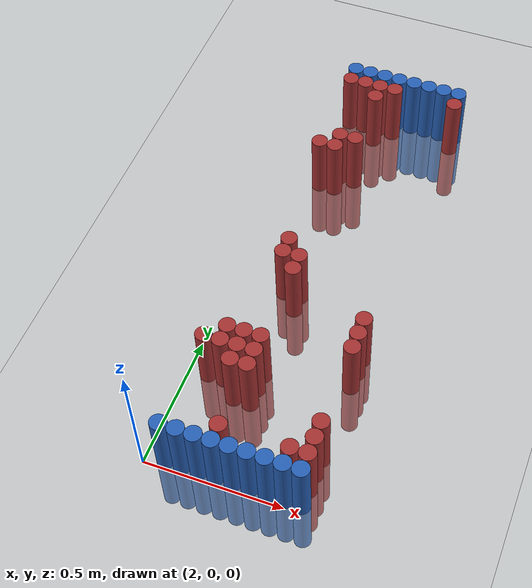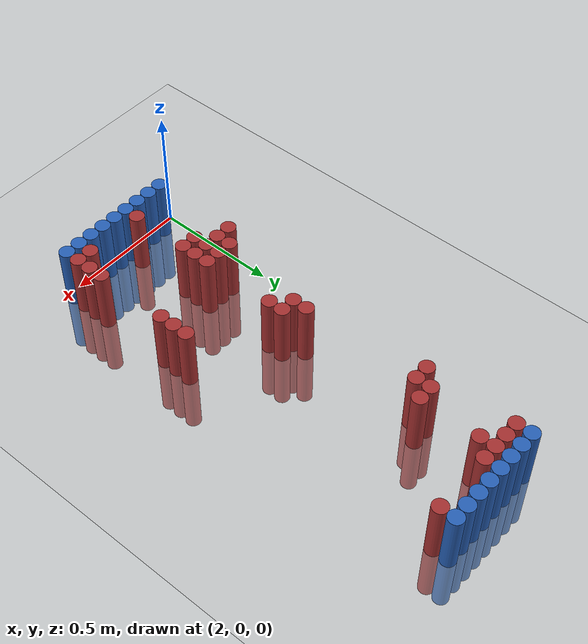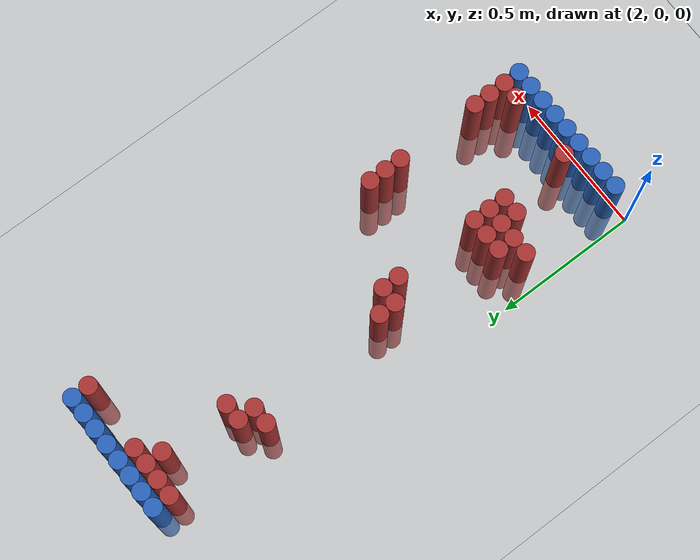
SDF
<sdf version="1.6">
 <world name="default">
  <model name="ground_plane">
   <static>1</static>
   <link name="link">
    <collision name="collision">
     <geometry><plane><normal>0 0 1</normal><size>100 100</size></plane></geometry>
     <surface><friction><ode><mu>100</mu><mu2>50</mu2></ode></friction></surface>
    </collision>
    <visual name="visual">
     <cast_shadows>0</cast_shadows>
     <geometry><plane><normal>0 0 1</normal><size>100 100</size></plane></geometry>
     <material>
      <script><uri>file://media/materials/scripts/gazebo.material</uri><name>Gazebo/Grey</name></script>
     </material>
    </visual>
   </link>
  </model>
  <model name="unit_cylinder_96">
   <static>1</static>
   <pose>2.130000 1.770000 0.000000 0.000000 0.000000 0.000000</pose>
   <link name="link">
    <inertial>
     <mass>1</mass>
     <inertia><ixx>0.145833</ixx><ixy>0</ixy><ixz>0</ixz><iyy>0.145833</iyy><iyz>0</iyz><izz>0.125</izz></inertia>
    </inertial>
    <collision name="collision">
     <geometry><cylinder><radius>0.030000</radius><length>0.5</length></cylinder></geometry>
    </collision>
    <visual name="visual">
     <geometry><cylinder><radius>0.030000</radius><length>0.5</length></cylinder></geometry>
     <material>
      <ambient>0.152000 0.379000 0.720000 1</ambient>
      <diffuse>0.152000 0.379000 0.720000 1</diffuse>
     </material>
     <material>
      <script><name>Gazebo/Grey</name><uri>file://media/materials/scripts/gazebo.material</uri></script>
     </material>
    </visual>
   </link>
  </model>
  <model name="unit_cylinder_97">
   <static>1</static>
   <pose>2.190000 1.770000 0.000000 0.000000 0.000000 0.000000</pose>
   <link name="link">
    <inertial>
     <mass>1</mass>
     <inertia><ixx>0.145833</ixx><ixy>0</ixy><ixz>0</ixz><iyy>0.145833</iyy><iyz>0</iyz><izz>0.125</izz></inertia>
    </inertial>
    <collision name="collision">
     <geometry><cylinder><radius>0.030000</radius><length>0.5</length></cylinder></geometry>
    </collision>
    <visual name="visual">
     <geometry><cylinder><radius>0.030000</radius><length>0.5</length></cylinder></geometry>
     <material>
      <ambient>0.152000 0.379000 0.720000 1</ambient>
      <diffuse>0.152000 0.379000 0.720000 1</diffuse>
     </material>
     <material>
      <script><name>Gazebo/Grey</name><uri>file://media/materials/scripts/gazebo.material</uri></script>
     </material>
    </visual>
   </link>
  </model>
  <model name="unit_cylinder_98">
   <static>1</static>
   <pose>2.250000 1.770000 0.000000 0.000000 0.000000 0.000000</pose>
   <link name="link">
    <inertial>
     <mass>1</mass>
     <inertia><ixx>0.145833</ixx><ixy>0</ixy><ixz>0</ixz><iyy>0.145833</iyy><iyz>0</iyz><izz>0.125</izz></inertia>
    </inertial>
    <collision name="collision">
     <geometry><cylinder><radius>0.030000</radius><length>0.5</length></cylinder></geometry>
    </collision>
    <visual name="visual">
     <geometry><cylinder><radius>0.030000</radius><length>0.5</length></cylinder></geometry>
     <material>
      <ambient>0.152000 0.379000 0.720000 1</ambient>
      <diffuse>0.152000 0.379000 0.720000 1</diffuse>
     </material>
     <material>
      <script><name>Gazebo/Grey</name><uri>file://media/materials/scripts/gazebo.material</uri></script>
     </material>
    </visual>
   </link>
  </model>
  <model name="unit_cylinder_99">
   <static>1</static>
   <pose>2.310000 1.770000 0.000000 0.000000 0.000000 0.000000</pose>
   <link name="link">
    <inertial>
     <mass>1</mass>
     <inertia><ixx>0.145833</ixx><ixy>0</ixy><ixz>0</ixz><iyy>0.145833</iyy><iyz>0</iyz><izz>0.125</izz></inertia>
    </inertial>
    <collision name="collision">
     <geometry><cylinder><radius>0.030000</radius><length>0.5</length></cylinder></geometry>
    </collision>
    <visual name="visual">
     <geometry><cylinder><radius>0.030000</radius><length>0.5</length></cylinder></geometry>
     <material>
      <ambient>0.152000 0.379000 0.720000 1</ambient>
      <diffuse>0.152000 0.379000 0.720000 1</diffuse>
     </material>
     <material>
      <script><name>Gazebo/Grey</name><uri>file://media/materials/scripts/gazebo.material</uri></script>
     </material>
    </visual>
   </link>
  </model>
  <model name="unit_cylinder_100">
   <static>1</static>
   <pose>2.370000 1.770000 0.000000 0.000000 0.000000 0.000000</pose>
   <link name="link">
    <inertial>
     <mass>1</mass>
     <inertia><ixx>0.145833</ixx><ixy>0</ixy><ixz>0</ixz><iyy>0.145833</iyy><iyz>0</iyz><izz>0.125</izz></inertia>
    </inertial>
    <collision name="collision">
     <geometry><cylinder><radius>0.030000</radius><length>0.5</length></cylinder></geometry>
    </collision>
    <visual name="visual">
     <geometry><cylinder><radius>0.030000</radius><length>0.5</length></cylinder></geometry>
     <material>
      <ambient>0.152000 0.379000 0.720000 1</ambient>
      <diffuse>0.152000 0.379000 0.720000 1</diffuse>
     </material>
     <material>
      <script><name>Gazebo/Grey</name><uri>file://media/materials/scripts/gazebo.material</uri></script>
     </material>
    </visual>
   </link>
  </model>
  <model name="unit_cylinder_101">
   <static>1</static>
   <pose>2.430000 1.770000 0.000000 0.000000 0.000000 0.000000</pose>
   <link name="link">
    <inertial>
     <mass>1</mass>
     <inertia><ixx>0.145833</ixx><ixy>0</ixy><ixz>0</ixz><iyy>0.145833</iyy><iyz>0</iyz><izz>0.125</izz></inertia>
    </inertial>
    <collision name="collision">
     <geometry><cylinder><radius>0.030000</radius><length>0.5</length></cylinder></geometry>
    </collision>
    <visual name="visual">
     <geometry><cylinder><radius>0.030000</radius><length>0.5</length></cylinder></geometry>
     <material>
      <ambient>0.152000 0.379000 0.720000 1</ambient>
      <diffuse>0.152000 0.379000 0.720000 1</diffuse>
     </material>
     <material>
      <script><name>Gazebo/Grey</name><uri>file://media/materials/scripts/gazebo.material</uri></script>
     </material>
    </visual>
   </link>
  </model>
  <model name="unit_cylinder_102">
   <static>1</static>
   <pose>2.490000 1.770000 0.000000 0.000000 0.000000 0.000000</pose>
   <link name="link">
    <inertial>
     <mass>1</mass>
     <inertia><ixx>0.145833</ixx><ixy>0</ixy><ixz>0</ixz><iyy>0.145833</iyy><iyz>0</iyz><izz>0.125</izz></inertia>
    </inertial>
    <collision name="collision">
     <geometry><cylinder><radius>0.030000</radius><length>0.5</length></cylinder></geometry>
    </collision>
    <visual name="visual">
     <geometry><cylinder><radius>0.030000</radius><length>0.5</length></cylinder></geometry>
     <material>
      <ambient>0.152000 0.379000 0.720000 1</ambient>
      <diffuse>0.152000 0.379000 0.720000 1</diffuse>
     </material>
     <material>
      <script><name>Gazebo/Grey</name><uri>file://media/materials/scripts/gazebo.material</uri></script>
     </material>
    </visual>
   </link>
  </model>
  <model name="unit_cylinder_103">
   <static>1</static>
   <pose>2.550000 1.770000 0.000000 0.000000 0.000000 0.000000</pose>
   <link name="link">
    <inertial>
     <mass>1</mass>
     <inertia><ixx>0.145833</ixx><ixy>0</ixy><ixz>0</ixz><iyy>0.145833</iyy><iyz>0</iyz><izz>0.125</izz></inertia>
    </inertial>
    <collision name="collision">
     <geometry><cylinder><radius>0.030000</radius><length>0.5</length></cylinder></geometry>
    </collision>
    <visual name="visual">
     <geometry><cylinder><radius>0.030000</radius><length>0.5</length></cylinder></geometry>
     <material>
      <ambient>0.152000 0.379000 0.720000 1</ambient>
      <diffuse>0.152000 0.379000 0.720000 1</diffuse>
     </material>
     <material>
      <script><name>Gazebo/Grey</name><uri>file://media/materials/scripts/gazebo.material</uri></script>
     </material>
    </visual>
   </link>
  </model>
  <model name="unit_cylinder_126">
   <static>1</static>
   <pose>2.130000 1.710000 0.000000 0.000000 0.000000 0.000000</pose>
   <link name="link">
    <inertial>
     <mass>1</mass>
     <inertia><ixx>0.145833</ixx><ixy>0</ixy><ixz>0</ixz><iyy>0.145833</iyy><iyz>0</iyz><izz>0.125</izz></inertia>
    </inertial>
    <collision name="collision">
     <geometry><cylinder><radius>0.030000</radius><length>0.5</length></cylinder></geometry>
    </collision>
    <visual name="visual">
     <geometry><cylinder><radius>0.030000</radius><length>0.5</length></cylinder></geometry>
     <material>
      <ambient>0.648000 0.192000 0.192000 1</ambient>
      <diffuse>0.648000 0.192000 0.192000 1</diffuse>
     </material>
     <material>
      <script><name>Gazebo/Grey</name><uri>file://media/materials/scripts/gazebo.material</uri></script>
     </material>
    </visual>
   </link>
  </model>
  <model name="unit_cylinder_127">
   <static>1</static>
   <pose>2.190000 1.710000 0.000000 0.000000 0.000000 0.000000</pose>
   <link name="link">
    <inertial>
     <mass>1</mass>
     <inertia><ixx>0.145833</ixx><ixy>0</ixy><ixz>0</ixz><iyy>0.145833</iyy><iyz>0</iyz><izz>0.125</izz></inertia>
    </inertial>
    <collision name="collision">
     <geometry><cylinder><radius>0.030000</radius><length>0.5</length></cylinder></geometry>
    </collision>
    <visual name="visual">
     <geometry><cylinder><radius>0.030000</radius><length>0.5</length></cylinder></geometry>
     <material>
      <ambient>0.648000 0.192000 0.192000 1</ambient>
      <diffuse>0.648000 0.192000 0.192000 1</diffuse>
     </material>
     <material>
      <script><name>Gazebo/Grey</name><uri>file://media/materials/scripts/gazebo.material</uri></script>
     </material>
    </visual>
   </link>
  </model>
  <model name="unit_cylinder_128">
   <static>1</static>
   <pose>2.250000 1.710000 0.000000 0.000000 0.000000 0.000000</pose>
   <link name="link">
    <inertial>
     <mass>1</mass>
     <inertia><ixx>0.145833</ixx><ixy>0</ixy><ixz>0</ixz><iyy>0.145833</iyy><iyz>0</iyz><izz>0.125</izz></inertia>
    </inertial>
    <collision name="collision">
     <geometry><cylinder><radius>0.030000</radius><length>0.5</length></cylinder></geometry>
    </collision>
    <visual name="visual">
     <geometry><cylinder><radius>0.030000</radius><length>0.5</length></cylinder></geometry>
     <material>
      <ambient>0.648000 0.192000 0.192000 1</ambient>
      <diffuse>0.648000 0.192000 0.192000 1</diffuse>
     </material>
     <material>
      <script><name>Gazebo/Grey</name><uri>file://media/materials/scripts/gazebo.material</uri></script>
     </material>
    </visual>
   </link>
  </model>
  <model name="unit_cylinder_129">
   <static>1</static>
   <pose>2.310000 1.710000 0.000000 0.000000 0.000000 0.000000</pose>
   <link name="link">
    <inertial>
     <mass>1</mass>
     <inertia><ixx>0.145833</ixx><ixy>0</ixy><ixz>0</ixz><iyy>0.145833</iyy><iyz>0</iyz><izz>0.125</izz></inertia>
    </inertial>
    <collision name="collision">
     <geometry><cylinder><radius>0.030000</radius><length>0.5</length></cylinder></geometry>
    </collision>
    <visual name="visual">
     <geometry><cylinder><radius>0.030000</radius><length>0.5</length></cylinder></geometry>
     <material>
      <ambient>0.648000 0.192000 0.192000 1</ambient>
      <diffuse>0.648000 0.192000 0.192000 1</diffuse>
     </material>
     <material>
      <script><name>Gazebo/Grey</name><uri>file://media/materials/scripts/gazebo.material</uri></script>
     </material>
    </visual>
   </link>
  </model>
  <model name="unit_cylinder_130">
   <static>1</static>
   <pose>2.550000 1.710000 0.000000 0.000000 0.000000 0.000000</pose>
   <link name="link">
    <inertial>
     <mass>1</mass>
     <inertia><ixx>0.145833</ixx><ixy>0</ixy><ixz>0</ixz><iyy>0.145833</iyy><iyz>0</iyz><izz>0.125</izz></inertia>
    </inertial>
    <collision name="collision">
     <geometry><cylinder><radius>0.030000</radius><length>0.5</length></cylinder></geometry>
    </collision>
    <visual name="visual">
     <geometry><cylinder><radius>0.030000</radius><length>0.5</length></cylinder></geometry>
     <material>
      <ambient>0.648000 0.192000 0.192000 1</ambient>
      <diffuse>0.648000 0.192000 0.192000 1</diffuse>
     </material>
     <material>
      <script><name>Gazebo/Grey</name><uri>file://media/materials/scripts/gazebo.material</uri></script>
     </material>
    </visual>
   </link>
  </model>
  <model name="unit_cylinder_139">
   <static>1</static>
   <pose>2.250000 1.650000 0.000000 0.000000 0.000000 0.000000</pose>
   <link name="link">
    <inertial>
     <mass>1</mass>
     <inertia><ixx>0.145833</ixx><ixy>0</ixy><ixz>0</ixz><iyy>0.145833</iyy><iyz>0</iyz><izz>0.125</izz></inertia>
    </inertial>
    <collision name="collision">
     <geometry><cylinder><radius>0.030000</radius><length>0.5</length></cylinder></geometry>
    </collision>
    <visual name="visual">
     <geometry><cylinder><radius>0.030000</radius><length>0.5</length></cylinder></geometry>
     <material>
      <ambient>0.648000 0.192000 0.192000 1</ambient>
      <diffuse>0.648000 0.192000 0.192000 1</diffuse>
     </material>
     <material>
      <script><name>Gazebo/Grey</name><uri>file://media/materials/scripts/gazebo.material</uri></script>
     </material>
    </visual>
   </link>
  </model>
  <model name="unit_cylinder_142">
   <static>1</static>
   <pose>2.190000 1.410000 0.000000 0.000000 0.000000 0.000000</pose>
   <link name="link">
    <inertial>
     <mass>1</mass>
     <inertia><ixx>0.145833</ixx><ixy>0</ixy><ixz>0</ixz><iyy>0.145833</iyy><iyz>0</iyz><izz>0.125</izz></inertia>
    </inertial>
    <collision name="collision">
     <geometry><cylinder><radius>0.030000</radius><length>0.5</length></cylinder></geometry>
    </collision>
    <visual name="visual">
     <geometry><cylinder><radius>0.030000</radius><length>0.5</length></cylinder></geometry>
     <material>
      <ambient>0.648000 0.192000 0.192000 1</ambient>
      <diffuse>0.648000 0.192000 0.192000 1</diffuse>
     </material>
     <material>
      <script><name>Gazebo/Grey</name><uri>file://media/materials/scripts/gazebo.material</uri></script>
     </material>
    </visual>
   </link>
  </model>
  <model name="unit_cylinder_143">
   <static>1</static>
   <pose>2.250000 1.410000 0.000000 0.000000 0.000000 0.000000</pose>
   <link name="link">
    <inertial>
     <mass>1</mass>
     <inertia><ixx>0.145833</ixx><ixy>0</ixy><ixz>0</ixz><iyy>0.145833</iyy><iyz>0</iyz><izz>0.125</izz></inertia>
    </inertial>
    <collision name="collision">
     <geometry><cylinder><radius>0.030000</radius><length>0.5</length></cylinder></geometry>
    </collision>
    <visual name="visual">
     <geometry><cylinder><radius>0.030000</radius><length>0.5</length></cylinder></geometry>
     <material>
      <ambient>0.648000 0.192000 0.192000 1</ambient>
      <diffuse>0.648000 0.192000 0.192000 1</diffuse>
     </material>
     <material>
      <script><name>Gazebo/Grey</name><uri>file://media/materials/scripts/gazebo.material</uri></script>
     </material>
    </visual>
   </link>
  </model>
  <model name="unit_cylinder_144">
   <static>1</static>
   <pose>2.130000 1.350000 0.000000 0.000000 0.000000 0.000000</pose>
   <link name="link">
    <inertial>
     <mass>1</mass>
     <inertia><ixx>0.145833</ixx><ixy>0</ixy><ixz>0</ixz><iyy>0.145833</iyy><iyz>0</iyz><izz>0.125</izz></inertia>
    </inertial>
    <collision name="collision">
     <geometry><cylinder><radius>0.030000</radius><length>0.5</length></cylinder></geometry>
    </collision>
    <visual name="visual">
     <geometry><cylinder><radius>0.030000</radius><length>0.5</length></cylinder></geometry>
     <material>
      <ambient>0.648000 0.192000 0.192000 1</ambient>
      <diffuse>0.648000 0.192000 0.192000 1</diffuse>
     </material>
     <material>
      <script><name>Gazebo/Grey</name><uri>file://media/materials/scripts/gazebo.material</uri></script>
     </material>
    </visual>
   </link>
  </model>
  <model name="unit_cylinder_145">
   <static>1</static>
   <pose>2.190000 1.350000 0.000000 0.000000 0.000000 0.000000</pose>
   <link name="link">
    <inertial>
     <mass>1</mass>
     <inertia><ixx>0.145833</ixx><ixy>0</ixy><ixz>0</ixz><iyy>0.145833</iyy><iyz>0</iyz><izz>0.125</izz></inertia>
    </inertial>
    <collision name="collision">
     <geometry><cylinder><radius>0.030000</radius><length>0.5</length></cylinder></geometry>
    </collision>
    <visual name="visual">
     <geometry><cylinder><radius>0.030000</radius><length>0.5</length></cylinder></geometry>
     <material>
      <ambient>0.648000 0.192000 0.192000 1</ambient>
      <diffuse>0.648000 0.192000 0.192000 1</diffuse>
     </material>
     <material>
      <script><name>Gazebo/Grey</name><uri>file://media/materials/scripts/gazebo.material</uri></script>
     </material>
    </visual>
   </link>
  </model>
  <model name="unit_cylinder_155">
   <static>1</static>
   <pose>2.190000 0.870000 0.000000 0.000000 0.000000 0.000000</pose>
   <link name="link">
    <inertial>
     <mass>1</mass>
     <inertia><ixx>0.145833</ixx><ixy>0</ixy><ixz>0</ixz><iyy>0.145833</iyy><iyz>0</iyz><izz>0.125</izz></inertia>
    </inertial>
    <collision name="collision">
     <geometry><cylinder><radius>0.030000</radius><length>0.5</length></cylinder></geometry>
    </collision>
    <visual name="visual">
     <geometry><cylinder><radius>0.030000</radius><length>0.5</length></cylinder></geometry>
     <material>
      <ambient>0.648000 0.192000 0.192000 1</ambient>
      <diffuse>0.648000 0.192000 0.192000 1</diffuse>
     </material>
     <material>
      <script><name>Gazebo/Grey</name><uri>file://media/materials/scripts/gazebo.material</uri></script>
     </material>
    </visual>
   </link>
  </model>
  <model name="unit_cylinder_156">
   <static>1</static>
   <pose>2.190000 0.810000 0.000000 0.000000 0.000000 0.000000</pose>
   <link name="link">
    <inertial>
     <mass>1</mass>
     <inertia><ixx>0.145833</ixx><ixy>0</ixy><ixz>0</ixz><iyy>0.145833</iyy><iyz>0</iyz><izz>0.125</izz></inertia>
    </inertial>
    <collision name="collision">
     <geometry><cylinder><radius>0.030000</radius><length>0.5</length></cylinder></geometry>
    </collision>
    <visual name="visual">
     <geometry><cylinder><radius>0.030000</radius><length>0.5</length></cylinder></geometry>
     <material>
      <ambient>0.648000 0.192000 0.192000 1</ambient>
      <diffuse>0.648000 0.192000 0.192000 1</diffuse>
     </material>
     <material>
      <script><name>Gazebo/Grey</name><uri>file://media/materials/scripts/gazebo.material</uri></script>
     </material>
    </visual>
   </link>
  </model>
  <model name="unit_cylinder_157">
   <static>1</static>
   <pose>2.250000 0.810000 0.000000 0.000000 0.000000 0.000000</pose>
   <link name="link">
    <inertial>
     <mass>1</mass>
     <inertia><ixx>0.145833</ixx><ixy>0</ixy><ixz>0</ixz><iyy>0.145833</iyy><iyz>0</iyz><izz>0.125</izz></inertia>
    </inertial>
    <collision name="collision">
     <geometry><cylinder><radius>0.030000</radius><length>0.5</length></cylinder></geometry>
    </collision>
    <visual name="visual">
     <geometry><cylinder><radius>0.030000</radius><length>0.5</length></cylinder></geometry>
     <material>
      <ambient>0.648000 0.192000 0.192000 1</ambient>
      <diffuse>0.648000 0.192000 0.192000 1</diffuse>
     </material>
     <material>
      <script><name>Gazebo/Grey</name><uri>file://media/materials/scripts/gazebo.material</uri></script>
     </material>
    </visual>
   </link>
  </model>
  <model name="unit_cylinder_158">
   <static>1</static>
   <pose>2.250000 0.750000 0.000000 0.000000 0.000000 0.000000</pose>
   <link name="link">
    <inertial>
     <mass>1</mass>
     <inertia><ixx>0.145833</ixx><ixy>0</ixy><ixz>0</ixz><iyy>0.145833</iyy><iyz>0</iyz><izz>0.125</izz></inertia>
    </inertial>
    <collision name="collision">
     <geometry><cylinder><radius>0.030000</radius><length>0.5</length></cylinder></geometry>
    </collision>
    <visual name="visual">
     <geometry><cylinder><radius>0.030000</radius><length>0.5</length></cylinder></geometry>
     <material>
      <ambient>0.648000 0.192000 0.192000 1</ambient>
      <diffuse>0.648000 0.192000 0.192000 1</diffuse>
     </material>
     <material>
      <script><name>Gazebo/Grey</name><uri>file://media/materials/scripts/gazebo.material</uri></script>
     </material>
    </visual>
   </link>
  </model>
  <model name="unit_cylinder_160">
   <static>1</static>
   <pose>2.550000 0.630000 0.000000 0.000000 0.000000 0.000000</pose>
   <link name="link">
    <inertial>
     <mass>1</mass>
     <inertia><ixx>0.145833</ixx><ixy>0</ixy><ixz>0</ixz><iyy>0.145833</iyy><iyz>0</iyz><izz>0.125</izz></inertia>
    </inertial>
    <collision name="collision">
     <geometry><cylinder><radius>0.030000</radius><length>0.5</length></cylinder></geometry>
    </collision>
    <visual name="visual">
     <geometry><cylinder><radius>0.030000</radius><length>0.5</length></cylinder></geometry>
     <material>
      <ambient>0.648000 0.192000 0.192000 1</ambient>
      <diffuse>0.648000 0.192000 0.192000 1</diffuse>
     </material>
     <material>
      <script><name>Gazebo/Grey</name><uri>file://media/materials/scripts/gazebo.material</uri></script>
     </material>
    </visual>
   </link>
  </model>
  <model name="unit_cylinder_163">
   <static>1</static>
   <pose>2.550000 0.570000 0.000000 0.000000 0.000000 0.000000</pose>
   <link name="link">
    <inertial>
     <mass>1</mass>
     <inertia><ixx>0.145833</ixx><ixy>0</ixy><ixz>0</ixz><iyy>0.145833</iyy><iyz>0</iyz><izz>0.125</izz></inertia>
    </inertial>
    <collision name="collision">
     <geometry><cylinder><radius>0.030000</radius><length>0.5</length></cylinder></geometry>
    </collision>
    <visual name="visual">
     <geometry><cylinder><radius>0.030000</radius><length>0.5</length></cylinder></geometry>
     <material>
      <ambient>0.648000 0.192000 0.192000 1</ambient>
      <diffuse>0.648000 0.192000 0.192000 1</diffuse>
     </material>
     <material>
      <script><name>Gazebo/Grey</name><uri>file://media/materials/scripts/gazebo.material</uri></script>
     </material>
    </visual>
   </link>
  </model>
  <model name="unit_cylinder_168">
   <static>1</static>
   <pose>2.550000 0.510000 0.000000 0.000000 0.000000 0.000000</pose>
   <link name="link">
    <inertial>
     <mass>1</mass>
     <inertia><ixx>0.145833</ixx><ixy>0</ixy><ixz>0</ixz><iyy>0.145833</iyy><iyz>0</iyz><izz>0.125</izz></inertia>
    </inertial>
    <collision name="collision">
     <geometry><cylinder><radius>0.030000</radius><length>0.5</length></cylinder></geometry>
    </collision>
    <visual name="visual">
     <geometry><cylinder><radius>0.030000</radius><length>0.5</length></cylinder></geometry>
     <material>
      <ambient>0.648000 0.192000 0.192000 1</ambient>
      <diffuse>0.648000 0.192000 0.192000 1</diffuse>
     </material>
     <material>
      <script><name>Gazebo/Grey</name><uri>file://media/materials/scripts/gazebo.material</uri></script>
     </material>
    </visual>
   </link>
  </model>
  <model name="unit_cylinder_174">
   <static>1</static>
   <pose>2.130000 0.450000 0.000000 0.000000 0.000000 0.000000</pose>
   <link name="link">
    <inertial>
     <mass>1</mass>
     <inertia><ixx>0.145833</ixx><ixy>0</ixy><ixz>0</ixz><iyy>0.145833</iyy><iyz>0</iyz><izz>0.125</izz></inertia>
    </inertial>
    <collision name="collision">
     <geometry><cylinder><radius>0.030000</radius><length>0.5</length></cylinder></geometry>
    </collision>
    <visual name="visual">
     <geometry><cylinder><radius>0.030000</radius><length>0.5</length></cylinder></geometry>
     <material>
      <ambient>0.648000 0.192000 0.192000 1</ambient>
      <diffuse>0.648000 0.192000 0.192000 1</diffuse>
     </material>
     <material>
      <script><name>Gazebo/Grey</name><uri>file://media/materials/scripts/gazebo.material</uri></script>
     </material>
    </visual>
   </link>
  </model>
  <model name="unit_cylinder_175">
   <static>1</static>
   <pose>2.190000 0.450000 0.000000 0.000000 0.000000 0.000000</pose>
   <link name="link">
    <inertial>
     <mass>1</mass>
     <inertia><ixx>0.145833</ixx><ixy>0</ixy><ixz>0</ixz><iyy>0.145833</iyy><iyz>0</iyz><izz>0.125</izz></inertia>
    </inertial>
    <collision name="collision">
     <geometry><cylinder><radius>0.030000</radius><length>0.5</length></cylinder></geometry>
    </collision>
    <visual name="visual">
     <geometry><cylinder><radius>0.030000</radius><length>0.5</length></cylinder></geometry>
     <material>
      <ambient>0.648000 0.192000 0.192000 1</ambient>
      <diffuse>0.648000 0.192000 0.192000 1</diffuse>
     </material>
     <material>
      <script><name>Gazebo/Grey</name><uri>file://media/materials/scripts/gazebo.material</uri></script>
     </material>
    </visual>
   </link>
  </model>
  <model name="unit_cylinder_176">
   <static>1</static>
   <pose>2.250000 0.450000 0.000000 0.000000 0.000000 0.000000</pose>
   <link name="link">
    <inertial>
     <mass>1</mass>
     <inertia><ixx>0.145833</ixx><ixy>0</ixy><ixz>0</ixz><iyy>0.145833</iyy><iyz>0</iyz><izz>0.125</izz></inertia>
    </inertial>
    <collision name="collision">
     <geometry><cylinder><radius>0.030000</radius><length>0.5</length></cylinder></geometry>
    </collision>
    <visual name="visual">
     <geometry><cylinder><radius>0.030000</radius><length>0.5</length></cylinder></geometry>
     <material>
      <ambient>0.648000 0.192000 0.192000 1</ambient>
      <diffuse>0.648000 0.192000 0.192000 1</diffuse>
     </material>
     <material>
      <script><name>Gazebo/Grey</name><uri>file://media/materials/scripts/gazebo.material</uri></script>
     </material>
    </visual>
   </link>
  </model>
  <model name="unit_cylinder_181">
   <static>1</static>
   <pose>2.070000 0.390000 0.000000 0.000000 0.000000 0.000000</pose>
   <link name="link">
    <inertial>
     <mass>1</mass>
     <inertia><ixx>0.145833</ixx><ixy>0</ixy><ixz>0</ixz><iyy>0.145833</iyy><iyz>0</iyz><izz>0.125</izz></inertia>
    </inertial>
    <collision name="collision">
     <geometry><cylinder><radius>0.030000</radius><length>0.5</length></cylinder></geometry>
    </collision>
    <visual name="visual">
     <geometry><cylinder><radius>0.030000</radius><length>0.5</length></cylinder></geometry>
     <material>
      <ambient>0.648000 0.192000 0.192000 1</ambient>
      <diffuse>0.648000 0.192000 0.192000 1</diffuse>
     </material>
     <material>
      <script><name>Gazebo/Grey</name><uri>file://media/materials/scripts/gazebo.material</uri></script>
     </material>
    </visual>
   </link>
  </model>
  <model name="unit_cylinder_182">
   <static>1</static>
   <pose>2.130000 0.390000 0.000000 0.000000 0.000000 0.000000</pose>
   <link name="link">
    <inertial>
     <mass>1</mass>
     <inertia><ixx>0.145833</ixx><ixy>0</ixy><ixz>0</ixz><iyy>0.145833</iyy><iyz>0</iyz><izz>0.125</izz></inertia>
    </inertial>
    <collision name="collision">
     <geometry><cylinder><radius>0.030000</radius><length>0.5</length></cylinder></geometry>
    </collision>
    <visual name="visual">
     <geometry><cylinder><radius>0.030000</radius><length>0.5</length></cylinder></geometry>
     <material>
      <ambient>0.648000 0.192000 0.192000 1</ambient>
      <diffuse>0.648000 0.192000 0.192000 1</diffuse>
     </material>
     <material>
      <script><name>Gazebo/Grey</name><uri>file://media/materials/scripts/gazebo.material</uri></script>
     </material>
    </visual>
   </link>
  </model>
  <model name="unit_cylinder_183">
   <static>1</static>
   <pose>2.190000 0.390000 0.000000 0.000000 0.000000 0.000000</pose>
   <link name="link">
    <inertial>
     <mass>1</mass>
     <inertia><ixx>0.145833</ixx><ixy>0</ixy><ixz>0</ixz><iyy>0.145833</iyy><iyz>0</iyz><izz>0.125</izz></inertia>
    </inertial>
    <collision name="collision">
     <geometry><cylinder><radius>0.030000</radius><length>0.5</length></cylinder></geometry>
    </collision>
    <visual name="visual">
     <geometry><cylinder><radius>0.030000</radius><length>0.5</length></cylinder></geometry>
     <material>
      <ambient>0.648000 0.192000 0.192000 1</ambient>
      <diffuse>0.648000 0.192000 0.192000 1</diffuse>
     </material>
     <material>
      <script><name>Gazebo/Grey</name><uri>file://media/materials/scripts/gazebo.material</uri></script>
     </material>
    </visual>
   </link>
  </model>
  <model name="unit_cylinder_184">
   <static>1</static>
   <pose>2.250000 0.390000 0.000000 0.000000 0.000000 0.000000</pose>
   <link name="link">
    <inertial>
     <mass>1</mass>
     <inertia><ixx>0.145833</ixx><ixy>0</ixy><ixz>0</ixz><iyy>0.145833</iyy><iyz>0</iyz><izz>0.125</izz></inertia>
    </inertial>
    <collision name="collision">
     <geometry><cylinder><radius>0.030000</radius><length>0.5</length></cylinder></geometry>
    </collision>
    <visual name="visual">
     <geometry><cylinder><radius>0.030000</radius><length>0.5</length></cylinder></geometry>
     <material>
      <ambient>0.648000 0.192000 0.192000 1</ambient>
      <diffuse>0.648000 0.192000 0.192000 1</diffuse>
     </material>
     <material>
      <script><name>Gazebo/Grey</name><uri>file://media/materials/scripts/gazebo.material</uri></script>
     </material>
    </visual>
   </link>
  </model>
  <model name="unit_cylinder_187">
   <static>1</static>
   <pose>2.190000 0.330000 0.000000 0.000000 0.000000 0.000000</pose>
   <link name="link">
    <inertial>
     <mass>1</mass>
     <inertia><ixx>0.145833</ixx><ixy>0</ixy><ixz>0</ixz><iyy>0.145833</iyy><iyz>0</iyz><izz>0.125</izz></inertia>
    </inertial>
    <collision name="collision">
     <geometry><cylinder><radius>0.030000</radius><length>0.5</length></cylinder></geometry>
    </collision>
    <visual name="visual">
     <geometry><cylinder><radius>0.030000</radius><length>0.5</length></cylinder></geometry>
     <material>
      <ambient>0.648000 0.192000 0.192000 1</ambient>
      <diffuse>0.648000 0.192000 0.192000 1</diffuse>
     </material>
     <material>
      <script><name>Gazebo/Grey</name><uri>file://media/materials/scripts/gazebo.material</uri></script>
     </material>
    </visual>
   </link>
  </model>
  <model name="unit_cylinder_188">
   <static>1</static>
   <pose>2.250000 0.330000 0.000000 0.000000 0.000000 0.000000</pose>
   <link name="link">
    <inertial>
     <mass>1</mass>
     <inertia><ixx>0.145833</ixx><ixy>0</ixy><ixz>0</ixz><iyy>0.145833</iyy><iyz>0</iyz><izz>0.125</izz></inertia>
    </inertial>
    <collision name="collision">
     <geometry><cylinder><radius>0.030000</radius><length>0.5</length></cylinder></geometry>
    </collision>
    <visual name="visual">
     <geometry><cylinder><radius>0.030000</radius><length>0.5</length></cylinder></geometry>
     <material>
      <ambient>0.648000 0.192000 0.192000 1</ambient>
      <diffuse>0.648000 0.192000 0.192000 1</diffuse>
     </material>
     <material>
      <script><name>Gazebo/Grey</name><uri>file://media/materials/scripts/gazebo.material</uri></script>
     </material>
    </visual>
   </link>
  </model>
  <model name="unit_cylinder_190">
   <static>1</static>
   <pose>2.550000 0.210000 0.000000 0.000000 0.000000 0.000000</pose>
   <link name="link">
    <inertial>
     <mass>1</mass>
     <inertia><ixx>0.145833</ixx><ixy>0</ixy><ixz>0</ixz><iyy>0.145833</iyy><iyz>0</iyz><izz>0.125</izz></inertia>
    </inertial>
    <collision name="collision">
     <geometry><cylinder><radius>0.030000</radius><length>0.5</length></cylinder></geometry>
    </collision>
    <visual name="visual">
     <geometry><cylinder><radius>0.030000</radius><length>0.5</length></cylinder></geometry>
     <material>
      <ambient>0.648000 0.192000 0.192000 1</ambient>
      <diffuse>0.648000 0.192000 0.192000 1</diffuse>
     </material>
     <material>
      <script><name>Gazebo/Grey</name><uri>file://media/materials/scripts/gazebo.material</uri></script>
     </material>
    </visual>
   </link>
  </model>
  <model name="unit_cylinder_191">
   <static>1</static>
   <pose>2.550000 0.150000 0.000000 0.000000 0.000000 0.000000</pose>
   <link name="link">
    <inertial>
     <mass>1</mass>
     <inertia><ixx>0.145833</ixx><ixy>0</ixy><ixz>0</ixz><iyy>0.145833</iyy><iyz>0</iyz><izz>0.125</izz></inertia>
    </inertial>
    <collision name="collision">
     <geometry><cylinder><radius>0.030000</radius><length>0.5</length></cylinder></geometry>
    </collision>
    <visual name="visual">
     <geometry><cylinder><radius>0.030000</radius><length>0.5</length></cylinder></geometry>
     <material>
      <ambient>0.648000 0.192000 0.192000 1</ambient>
      <diffuse>0.648000 0.192000 0.192000 1</diffuse>
     </material>
     <material>
      <script><name>Gazebo/Grey</name><uri>file://media/materials/scripts/gazebo.material</uri></script>
     </material>
    </visual>
   </link>
  </model>
  <model name="unit_cylinder_196">
   <static>1</static>
   <pose>2.250000 0.090000 0.000000 0.000000 0.000000 0.000000</pose>
   <link name="link">
    <inertial>
     <mass>1</mass>
     <inertia><ixx>0.145833</ixx><ixy>0</ixy><ixz>0</ixz><iyy>0.145833</iyy><iyz>0</iyz><izz>0.125</izz></inertia>
    </inertial>
    <collision name="collision">
     <geometry><cylinder><radius>0.030000</radius><length>0.5</length></cylinder></geometry>
    </collision>
    <visual name="visual">
     <geometry><cylinder><radius>0.030000</radius><length>0.5</length></cylinder></geometry>
     <material>
      <ambient>0.648000 0.192000 0.192000 1</ambient>
      <diffuse>0.648000 0.192000 0.192000 1</diffuse>
     </material>
     <material>
      <script><name>Gazebo/Grey</name><uri>file://media/materials/scripts/gazebo.material</uri></script>
     </material>
    </visual>
   </link>
  </model>
  <model name="unit_cylinder_197">
   <static>1</static>
   <pose>2.490000 0.090000 0.000000 0.000000 0.000000 0.000000</pose>
   <link name="link">
    <inertial>
     <mass>1</mass>
     <inertia><ixx>0.145833</ixx><ixy>0</ixy><ixz>0</ixz><iyy>0.145833</iyy><iyz>0</iyz><izz>0.125</izz></inertia>
    </inertial>
    <collision name="collision">
     <geometry><cylinder><radius>0.030000</radius><length>0.5</length></cylinder></geometry>
    </collision>
    <visual name="visual">
     <geometry><cylinder><radius>0.030000</radius><length>0.5</length></cylinder></geometry>
     <material>
      <ambient>0.648000 0.192000 0.192000 1</ambient>
      <diffuse>0.648000 0.192000 0.192000 1</diffuse>
     </material>
     <material>
      <script><name>Gazebo/Grey</name><uri>file://media/materials/scripts/gazebo.material</uri></script>
     </material>
    </visual>
   </link>
  </model>
  <model name="unit_cylinder_198">
   <static>1</static>
   <pose>2.550000 0.090000 0.000000 0.000000 0.000000 0.000000</pose>
   <link name="link">
    <inertial>
     <mass>1</mass>
     <inertia><ixx>0.145833</ixx><ixy>0</ixy><ixz>0</ixz><iyy>0.145833</iyy><iyz>0</iyz><izz>0.125</izz></inertia>
    </inertial>
    <collision name="collision">
     <geometry><cylinder><radius>0.030000</radius><length>0.5</length></cylinder></geometry>
    </collision>
    <visual name="visual">
     <geometry><cylinder><radius>0.030000</radius><length>0.5</length></cylinder></geometry>
     <material>
      <ambient>0.648000 0.192000 0.192000 1</ambient>
      <diffuse>0.648000 0.192000 0.192000 1</diffuse>
     </material>
     <material>
      <script><name>Gazebo/Grey</name><uri>file://media/materials/scripts/gazebo.material</uri></script>
     </material>
    </visual>
   </link>
  </model>
  <model name="unit_cylinder_212">
   <static>1</static>
   <pose>2.070000 0.030000 0.000000 0.000000 0.000000 0.000000</pose>
   <link name="link">
    <inertial>
     <mass>1</mass>
     <inertia><ixx>0.145833</ixx><ixy>0</ixy><ixz>0</ixz><iyy>0.145833</iyy><iyz>0</iyz><izz>0.125</izz></inertia>
    </inertial>
    <collision name="collision">
     <geometry><cylinder><radius>0.030000</radius><length>0.5</length></cylinder></geometry>
    </collision>
    <visual name="visual">
     <geometry><cylinder><radius>0.030000</radius><length>0.5</length></cylinder></geometry>
     <material>
      <ambient>0.152000 0.379000 0.720000 1</ambient>
      <diffuse>0.152000 0.379000 0.720000 1</diffuse>
     </material>
     <material>
      <script><name>Gazebo/Grey</name><uri>file://media/materials/scripts/gazebo.material</uri></script>
     </material>
    </visual>
   </link>
  </model>
  <model name="unit_cylinder_213">
   <static>1</static>
   <pose>2.130000 0.030000 0.000000 0.000000 0.000000 0.000000</pose>
   <link name="link">
    <inertial>
     <mass>1</mass>
     <inertia><ixx>0.145833</ixx><ixy>0</ixy><ixz>0</ixz><iyy>0.145833</iyy><iyz>0</iyz><izz>0.125</izz></inertia>
    </inertial>
    <collision name="collision">
     <geometry><cylinder><radius>0.030000</radius><length>0.5</length></cylinder></geometry>
    </collision>
    <visual name="visual">
     <geometry><cylinder><radius>0.030000</radius><length>0.5</length></cylinder></geometry>
     <material>
      <ambient>0.152000 0.379000 0.720000 1</ambient>
      <diffuse>0.152000 0.379000 0.720000 1</diffuse>
     </material>
     <material>
      <script><name>Gazebo/Grey</name><uri>file://media/materials/scripts/gazebo.material</uri></script>
     </material>
    </visual>
   </link>
  </model>
  <model name="unit_cylinder_214">
   <static>1</static>
   <pose>2.190000 0.030000 0.000000 0.000000 0.000000 0.000000</pose>
   <link name="link">
    <inertial>
     <mass>1</mass>
     <inertia><ixx>0.145833</ixx><ixy>0</ixy><ixz>0</ixz><iyy>0.145833</iyy><iyz>0</iyz><izz>0.125</izz></inertia>
    </inertial>
    <collision name="collision">
     <geometry><cylinder><radius>0.030000</radius><length>0.5</length></cylinder></geometry>
    </collision>
    <visual name="visual">
     <geometry><cylinder><radius>0.030000</radius><length>0.5</length></cylinder></geometry>
     <material>
      <ambient>0.152000 0.379000 0.720000 1</ambient>
      <diffuse>0.152000 0.379000 0.720000 1</diffuse>
     </material>
     <material>
      <script><name>Gazebo/Grey</name><uri>file://media/materials/scripts/gazebo.material</uri></script>
     </material>
    </visual>
   </link>
  </model>
  <model name="unit_cylinder_215">
   <static>1</static>
   <pose>2.250000 0.030000 0.000000 0.000000 0.000000 0.000000</pose>
   <link name="link">
    <inertial>
     <mass>1</mass>
     <inertia><ixx>0.145833</ixx><ixy>0</ixy><ixz>0</ixz><iyy>0.145833</iyy><iyz>0</iyz><izz>0.125</izz></inertia>
    </inertial>
    <collision name="collision">
     <geometry><cylinder><radius>0.030000</radius><length>0.5</length></cylinder></geometry>
    </collision>
    <visual name="visual">
     <geometry><cylinder><radius>0.030000</radius><length>0.5</length></cylinder></geometry>
     <material>
      <ambient>0.152000 0.379000 0.720000 1</ambient>
      <diffuse>0.152000 0.379000 0.720000 1</diffuse>
     </material>
     <material>
      <script><name>Gazebo/Grey</name><uri>file://media/materials/scripts/gazebo.material</uri></script>
     </material>
    </visual>
   </link>
  </model>
  <model name="unit_cylinder_216">
   <static>1</static>
   <pose>2.310000 0.030000 0.000000 0.000000 0.000000 0.000000</pose>
   <link name="link">
    <inertial>
     <mass>1</mass>
     <inertia><ixx>0.145833</ixx><ixy>0</ixy><ixz>0</ixz><iyy>0.145833</iyy><iyz>0</iyz><izz>0.125</izz></inertia>
    </inertial>
    <collision name="collision">
     <geometry><cylinder><radius>0.030000</radius><length>0.5</length></cylinder></geometry>
    </collision>
    <visual name="visual">
     <geometry><cylinder><radius>0.030000</radius><length>0.5</length></cylinder></geometry>
     <material>
      <ambient>0.152000 0.379000 0.720000 1</ambient>
      <diffuse>0.152000 0.379000 0.720000 1</diffuse>
     </material>
     <material>
      <script><name>Gazebo/Grey</name><uri>file://media/materials/scripts/gazebo.material</uri></script>
     </material>
    </visual>
   </link>
  </model>
  <model name="unit_cylinder_217">
   <static>1</static>
   <pose>2.370000 0.030000 0.000000 0.000000 0.000000 0.000000</pose>
   <link name="link">
    <inertial>
     <mass>1</mass>
     <inertia><ixx>0.145833</ixx><ixy>0</ixy><ixz>0</ixz><iyy>0.145833</iyy><iyz>0</iyz><izz>0.125</izz></inertia>
    </inertial>
    <collision name="collision">
     <geometry><cylinder><radius>0.030000</radius><length>0.5</length></cylinder></geometry>
    </collision>
    <visual name="visual">
     <geometry><cylinder><radius>0.030000</radius><length>0.5</length></cylinder></geometry>
     <material>
      <ambient>0.152000 0.379000 0.720000 1</ambient>
      <diffuse>0.152000 0.379000 0.720000 1</diffuse>
     </material>
     <material>
      <script><name>Gazebo/Grey</name><uri>file://media/materials/scripts/gazebo.material</uri></script>
     </material>
    </visual>
   </link>
  </model>
  <model name="unit_cylinder_218">
   <static>1</static>
   <pose>2.430000 0.030000 0.000000 0.000000 0.000000 0.000000</pose>
   <link name="link">
    <inertial>
     <mass>1</mass>
     <inertia><ixx>0.145833</ixx><ixy>0</ixy><ixz>0</ixz><iyy>0.145833</iyy><iyz>0</iyz><izz>0.125</izz></inertia>
    </inertial>
    <collision name="collision">
     <geometry><cylinder><radius>0.030000</radius><length>0.5</length></cylinder></geometry>
    </collision>
    <visual name="visual">
     <geometry><cylinder><radius>0.030000</radius><length>0.5</length></cylinder></geometry>
     <material>
      <ambient>0.152000 0.379000 0.720000 1</ambient>
      <diffuse>0.152000 0.379000 0.720000 1</diffuse>
     </material>
     <material>
      <script><name>Gazebo/Grey</name><uri>file://media/materials/scripts/gazebo.material</uri></script>
     </material>
    </visual>
   </link>
  </model>
  <model name="unit_cylinder_219">
   <static>1</static>
   <pose>2.490000 0.030000 0.000000 0.000000 0.000000 0.000000</pose>
   <link name="link">
    <inertial>
     <mass>1</mass>
     <inertia><ixx>0.145833</ixx><ixy>0</ixy><ixz>0</ixz><iyy>0.145833</iyy><iyz>0</iyz><izz>0.125</izz></inertia>
    </inertial>
    <collision name="collision">
     <geometry><cylinder><radius>0.030000</radius><length>0.5</length></cylinder></geometry>
    </collision>
    <visual name="visual">
     <geometry><cylinder><radius>0.030000</radius><length>0.5</length></cylinder></geometry>
     <material>
      <ambient>0.152000 0.379000 0.720000 1</ambient>
      <diffuse>0.152000 0.379000 0.720000 1</diffuse>
     </material>
     <material>
      <script><name>Gazebo/Grey</name><uri>file://media/materials/scripts/gazebo.material</uri></script>
     </material>
    </visual>
   </link>
  </model>
  <model name="unit_cylinder_220">
   <static>1</static>
   <pose>2.550000 0.030000 0.000000 0.000000 0.000000 0.000000</pose>
   <link name="link">
    <inertial>
     <mass>1</mass>
     <inertia><ixx>0.145833</ixx><ixy>0</ixy><ixz>0</ixz><iyy>0.145833</iyy><iyz>0</iyz><izz>0.125</izz></inertia>
    </inertial>
    <collision name="collision">
     <geometry><cylinder><radius>0.030000</radius><length>0.5</length></cylinder></geometry>
    </collision>
    <visual name="visual">
     <geometry><cylinder><radius>0.030000</radius><length>0.5</length></cylinder></geometry>
     <material>
      <ambient>0.152000 0.379000 0.720000 1</ambient>
      <diffuse>0.152000 0.379000 0.720000 1</diffuse>
     </material>
     <material>
      <script><name>Gazebo/Grey</name><uri>file://media/materials/scripts/gazebo.material</uri></script>
     </material>
    </visual>
   </link>
  </model>
 </world>
</sdf>
